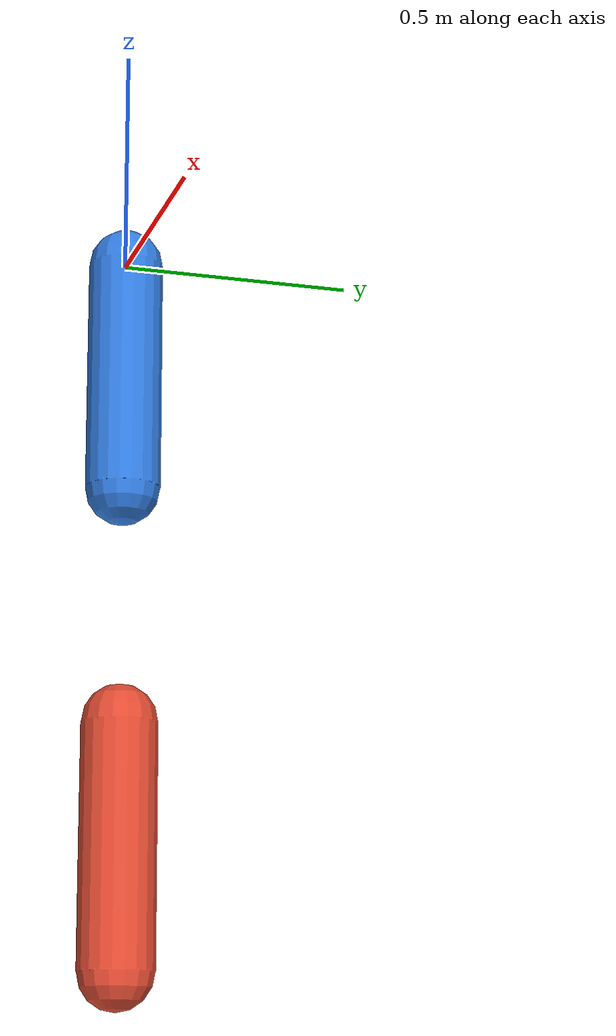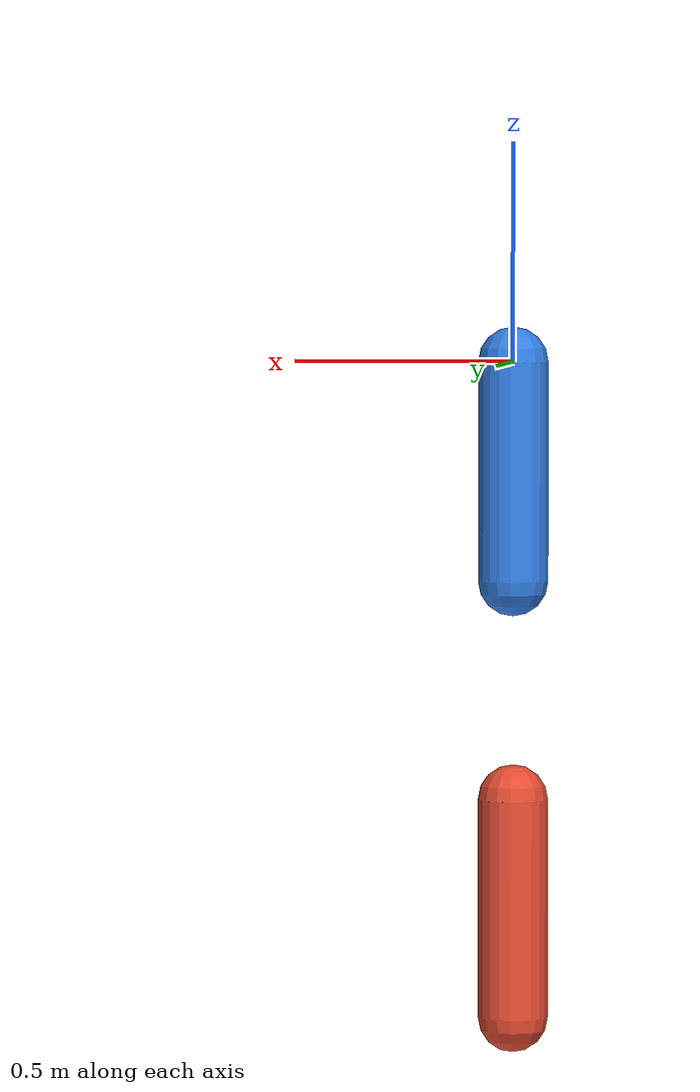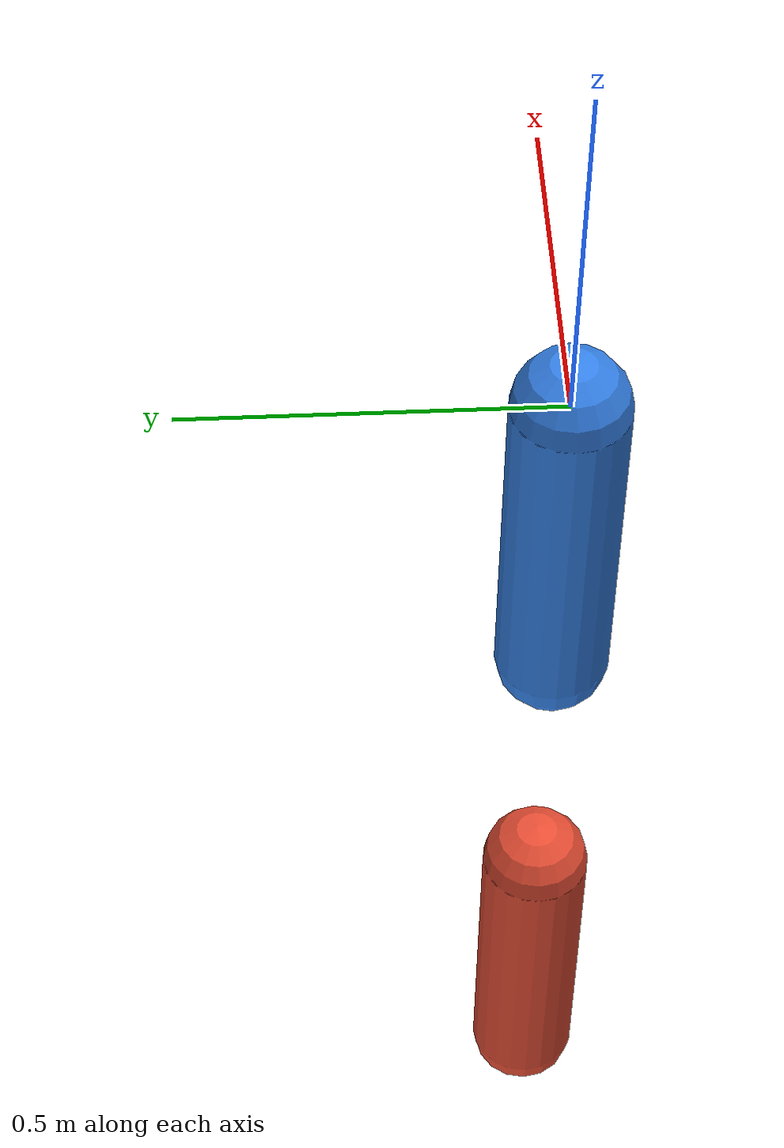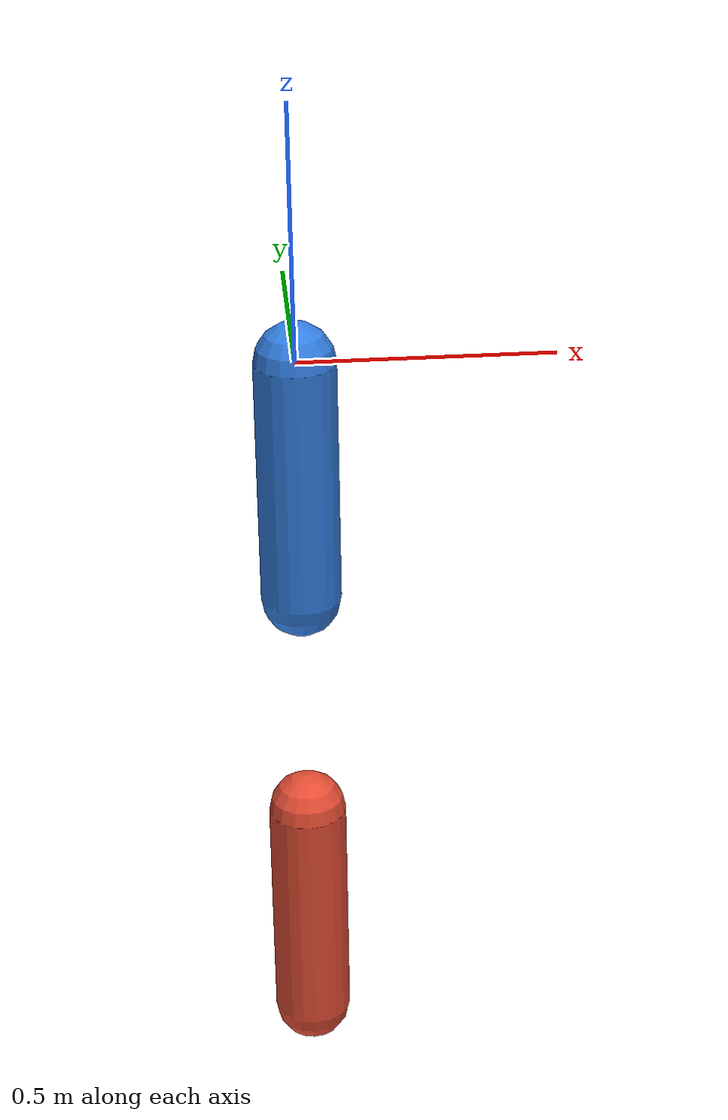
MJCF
<mujoco model="double_pendulum">
  <compiler angle="radian" autolimits="true"/>
  <option timestep="0.002" integrator="RK4"/>
  <worldbody>
    <light name="top" pos="0 0 2"/>

    <body name="pivot" pos="0 0 0">
      <geom type="sphere" size="0.03" mass="0.03" rgba="0 0 0 1"/>

      <body name="link1" pos="0 0 0">
        <joint name="joint1" type="hinge" axis="0 1 0" range="-3.141592 3.141592" damping="0.0003" frictionloss="0.00002"/>
        <geom name="rod1" type="capsule" fromto="0 0 0  0 0 -0.5"
              size="0.08" rgba="0.2 0.5 0.9 1" mass="0.005"/>

        <body name="link1_tip" pos="0 0 -0.5">
          <geom type="sphere" size="0.04" rgba="1 1 0 1" mass="0.0045"/>

          <body name="link2" pos="0 0 -0.5">
            <joint name="joint2" type="hinge" axis="0 1 0" damping="0.0005" frictionloss="0.0003" />
            <geom name="rod2" type="capsule" fromto="0 0 0  0 0 -0.5"
                  size="0.08" rgba="0.9 0.3 0.2 1" mass="0.003"/>

            <body name="tip" pos="0 0 -0.5">
              <geom type="sphere" size="0.04" rgba="1 1 0 1" mass="0.0035"/>
            </body>
          </body>
        </body>
      </body>
    </body>
  </worldbody>

  <sensor>
    <jointpos joint="joint2" name="joint2_angle"/>
  </sensor>

  <actuator>
    <motor name="torque1" joint="joint1" gear="1" ctrlrange="-0.066 0.066"/>  # torque measured about 10g over 0.08m rod equals 0.08 N-m
  </actuator>

  <contact>
    <exclude body1="pivot" body2="link1"/>
    <exclude body1="pivot" body2="tip"/>
    <exclude body1="pivot" body2="link2"/>
    <exclude body1="link1" body2="link2"/>
    <exclude body1="link1" body2="tip"/>
    <exclude body1="link2" body2="tip"/>
    <exclude body1="link1_tip" body2="link2"/>
    <exclude body1="link1_tip" body2="tip"/>
    <exclude body1="link1_tip" body2="link1"/>
    <exclude body1="link1_tip" body2="pivot"/>
  </contact>

  <keyframe>
    <key name="hanging" qpos="0 0" ctrl="0"/>
    <key name="upright" qpos="0 -3.141592" ctrl="0"/>
  </keyframe>
</mujoco>
